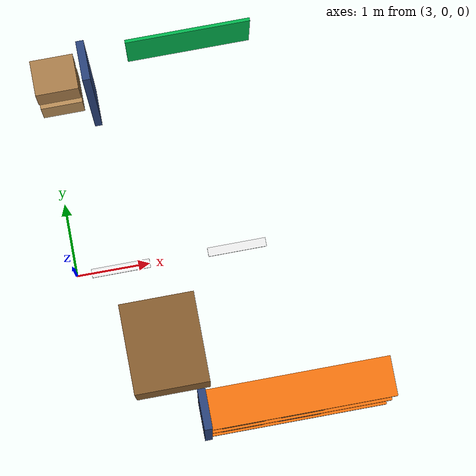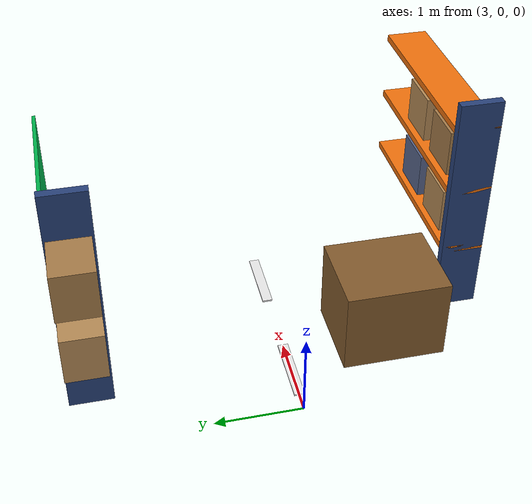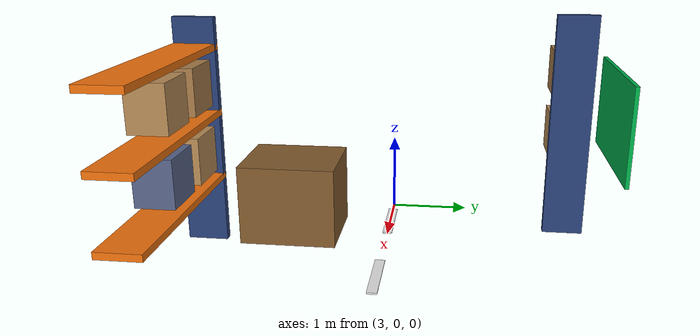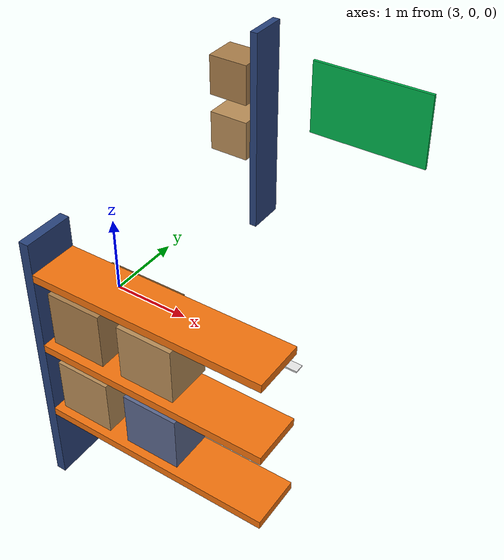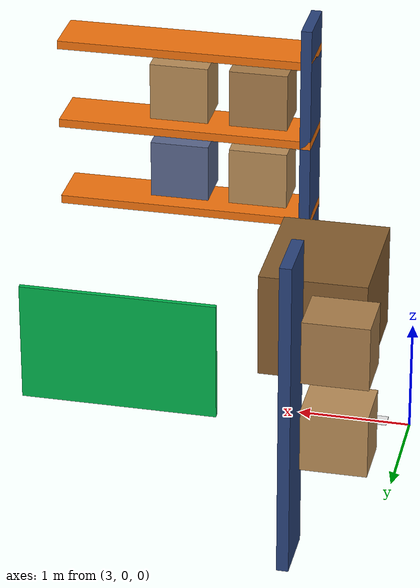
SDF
<sdf version="1.10">
 <world name="warehouse_corridor">
  <model name="lane_1">
   <static>true</static>
   <pose>3.6 0 0.012 0 0 0</pose>
   <link name="link">
    <visual name="vis">
     <geometry><box><size>0.8 0.12 0.02</size></box></geometry>
     <material>
      <ambient>0.7 0.7 0.7 1</ambient>
      <diffuse>0.92 0.92 0.92 1</diffuse>
      <specular>0.1 0.1 0.1 1</specular>
     </material>
    </visual>
   </link>
  </model>
  <model name="lane_2">
   <static>true</static>
   <pose>5.2 0 0.012 0 0 0</pose>
   <link name="link">
    <visual name="vis">
     <geometry><box><size>0.8 0.12 0.02</size></box></geometry>
     <material>
      <ambient>0.7 0.7 0.7 1</ambient>
      <diffuse>0.92 0.92 0.92 1</diffuse>
      <specular>0.1 0.1 0.1 1</specular>
     </material>
    </visual>
   </link>
  </model>
  <model name="placard_A">
   <static>true</static>
   <pose>5 2.49 1.9 0 0 0</pose>
   <link name="link">
    <visual name="vis">
     <geometry><box><size>1.6 0.04 1.0</size></box></geometry>
     <material>
      <ambient>0.0 0.5 0.2 1</ambient>
      <diffuse>0.0 0.7 0.3 1</diffuse>
      <specular>0.1 0.1 0.1 1</specular>
     </material>
    </visual>
   </link>
  </model>
  <model name="rack_L25_up1">
   <static>true</static>
   <pose>3.65 2.25 1.4 0 0 0</pose>
   <link name="link">
    <collision name="col"><geometry><box><size>0.1 0.5 2.8</size></box></geometry></collision>
    <visual name="vis">
     <geometry><box><size>0.1 0.5 2.8</size></box></geometry>
     <material>
      <ambient>0.10 0.16 0.30 1</ambient>
      <diffuse>0.16 0.26 0.48 1</diffuse>
      <specular>0.3 0.3 0.35 1</specular>
     </material>
    </visual>
   </link>
  </model>
  <model name="rack_L25_box02">
   <static>true</static>
   <pose>3.25 2.25 1.25 0 0 0</pose>
   <link name="link">
    <collision name="col"><geometry><box><size>0.55 0.45 0.55</size></box></geometry></collision>
    <visual name="vis">
     <geometry><box><size>0.55 0.45 0.55</size></box></geometry>
     <material>
      <ambient>0.42 0.30 0.16 1</ambient>
      <diffuse>0.72 0.55 0.34 1</diffuse>
      <specular>0.1 0.1 0.1 1</specular>
     </material>
    </visual>
   </link>
  </model>
  <model name="rack_L25_box12">
   <static>true</static>
   <pose>3.25 2.25 2.05 0 0 0</pose>
   <link name="link">
    <collision name="col"><geometry><box><size>0.55 0.45 0.55</size></box></geometry></collision>
    <visual name="vis">
     <geometry><box><size>0.55 0.45 0.55</size></box></geometry>
     <material>
      <ambient>0.38 0.27 0.14 1</ambient>
      <diffuse>0.66 0.49 0.29 1</diffuse>
      <specular>0.1 0.1 0.1 1</specular>
     </material>
    </visual>
   </link>
  </model>
  <model name="rack_R55_up0">
   <static>true</static>
   <pose>4.35 -2.25 1.4 0 0 0</pose>
   <link name="link">
    <collision name="col"><geometry><box><size>0.1 0.5 2.8</size></box></geometry></collision>
    <visual name="vis">
     <geometry><box><size>0.1 0.5 2.8</size></box></geometry>
     <material>
      <ambient>0.10 0.16 0.30 1</ambient>
      <diffuse>0.16 0.26 0.48 1</diffuse>
      <specular>0.3 0.3 0.35 1</specular>
     </material>
    </visual>
   </link>
  </model>
  <model name="rack_R55_beam0">
   <static>true</static>
   <pose>5.5 -2.25 0.85 0 0 0</pose>
   <link name="link">
    <collision name="col"><geometry><box><size>2.4 0.5 0.08</size></box></geometry></collision>
    <visual name="vis">
     <geometry><box><size>2.4 0.5 0.08</size></box></geometry>
     <material>
      <ambient>0.55 0.27 0.0 1</ambient>
      <diffuse>0.95 0.45 0.05 1</diffuse>
      <specular>0.3 0.2 0.1 1</specular>
     </material>
    </visual>
   </link>
  </model>
  <model name="rack_R55_beam1">
   <static>true</static>
   <pose>5.5 -2.25 1.65 0 0 0</pose>
   <link name="link">
    <collision name="col"><geometry><box><size>2.4 0.5 0.08</size></box></geometry></collision>
    <visual name="vis">
     <geometry><box><size>2.4 0.5 0.08</size></box></geometry>
     <material>
      <ambient>0.55 0.27 0.0 1</ambient>
      <diffuse>0.95 0.45 0.05 1</diffuse>
      <specular>0.3 0.2 0.1 1</specular>
     </material>
    </visual>
   </link>
  </model>
  <model name="rack_R55_beam2">
   <static>true</static>
   <pose>5.5 -2.25 2.45 0 0 0</pose>
   <link name="link">
    <collision name="col"><geometry><box><size>2.4 0.5 0.08</size></box></geometry></collision>
    <visual name="vis">
     <geometry><box><size>2.4 0.5 0.08</size></box></geometry>
     <material>
      <ambient>0.55 0.27 0.0 1</ambient>
      <diffuse>0.95 0.45 0.05 1</diffuse>
      <specular>0.3 0.2 0.1 1</specular>
     </material>
    </visual>
   </link>
  </model>
  <model name="rack_R55_box00">
   <static>true</static>
   <pose>4.8 -2.25 1.25 0 0 0</pose>
   <link name="link">
    <collision name="col"><geometry><box><size>0.55 0.45 0.55</size></box></geometry></collision>
    <visual name="vis">
     <geometry><box><size>0.55 0.45 0.55</size></box></geometry>
     <material>
      <ambient>0.42 0.30 0.16 1</ambient>
      <diffuse>0.72 0.55 0.34 1</diffuse>
      <specular>0.1 0.1 0.1 1</specular>
     </material>
    </visual>
   </link>
  </model>
  <model name="rack_R55_box01">
   <static>true</static>
   <pose>5.55 -2.25 1.25 0 0 0</pose>
   <link name="link">
    <collision name="col"><geometry><box><size>0.55 0.45 0.55</size></box></geometry></collision>
    <visual name="vis">
     <geometry><box><size>0.55 0.45 0.55</size></box></geometry>
     <material>
      <ambient>0.20 0.22 0.28 1</ambient>
      <diffuse>0.35 0.40 0.55 1</diffuse>
      <specular>0.5 0.5 0.6 1</specular>
     </material>
    </visual>
   </link>
  </model>
  <model name="rack_R55_box10">
   <static>true</static>
   <pose>4.8 -2.25 2.05 0 0 0</pose>
   <link name="link">
    <collision name="col"><geometry><box><size>0.55 0.45 0.55</size></box></geometry></collision>
    <visual name="vis">
     <geometry><box><size>0.55 0.45 0.55</size></box></geometry>
     <material>
      <ambient>0.38 0.27 0.14 1</ambient>
      <diffuse>0.66 0.49 0.29 1</diffuse>
      <specular>0.1 0.1 0.1 1</specular>
     </material>
    </visual>
   </link>
  </model>
  <model name="rack_R55_box11">
   <static>true</static>
   <pose>5.55 -2.25 2.05 0 0 0</pose>
   <link name="link">
    <collision name="col"><geometry><box><size>0.55 0.45 0.55</size></box></geometry></collision>
    <visual name="vis">
     <geometry><box><size>0.55 0.45 0.55</size></box></geometry>
     <material>
      <ambient>0.42 0.30 0.16 1</ambient>
      <diffuse>0.72 0.55 0.34 1</diffuse>
      <specular>0.1 0.1 0.1 1</specular>
     </material>
    </visual>
   </link>
  </model>
  <model name="obs_a_pallet">
   <static>true</static>
   <pose>4 -1.2 0.5 0 0 0</pose>
   <link name="link">
    <collision name="col"><geometry><box><size>1.0 1.2 1.0</size></box></geometry></collision>
    <visual name="vis">
     <geometry><box><size>1.0 1.2 1.0</size></box></geometry>
     <material>
      <ambient>0.30 0.20 0.10 1</ambient>
      <diffuse>0.52 0.36 0.18 1</diffuse>
      <specular>0.1 0.1 0.1 1</specular>
     </material>
    </visual>
   </link>
  </model>
 </world>
</sdf>
